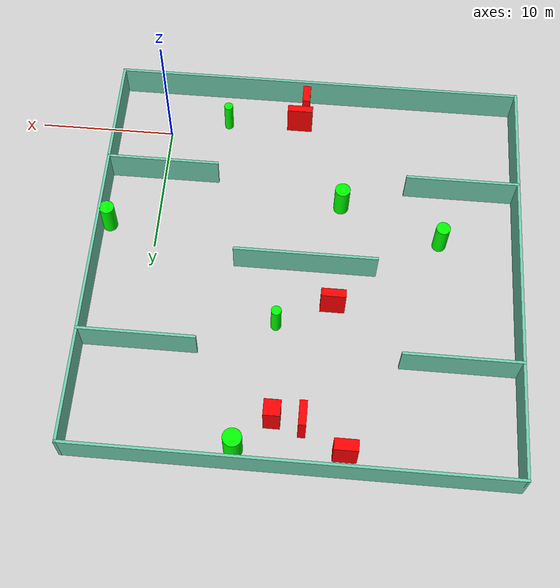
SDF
<sdf version="1.7">
 <world name="default">
  <light name="sun" type="directional">
   <pose>0 0 10 0 -0 0</pose>
   <diffuse>0.8 0.8 0.8 1</diffuse>
   <specular>0.2 0.2 0.2 1</specular>
   <attenuation>
    <range>1000</range>
    <constant>0.9</constant>
    <linear>0.01</linear>
    <quadratic>0.001</quadratic>
   </attenuation>
   <direction>-0.5 0.1 -0.9</direction>
   <spot><inner_angle>0</inner_angle><outer_angle>0</outer_angle><falloff>0</falloff></spot>
  </light>
  <model name="ground_plane">
   <static>1</static>
   <link name="link">
    <collision name="collision">
     <geometry><plane><normal>0 0 1</normal><size>100 100</size></plane></geometry>
     <surface>
      <contact><collide_bitmask>65535</collide_bitmask></contact>
      <friction><ode><mu>100</mu><mu2>50</mu2></ode></friction>
     </surface>
    </collision>
    <visual name="visual">
     <cast_shadows>0</cast_shadows>
     <geometry><plane><normal>0 0 1</normal><size>100 100</size></plane></geometry>
     <material>
      <script><uri>file://media/materials/scripts/gazebo.material</uri><name>Gazebo/Grey</name></script>
     </material>
    </visual>
   </link>
  </model>
  <gravity>0 0 -9.8</gravity>
  <magnetic_field>6e-06 2.3e-05 -4.2e-05</magnetic_field>
  <atmosphere type="adiabatic"/>
  <physics type="ode">
   <max_step_size>0.001</max_step_size>
   <real_time_factor>1</real_time_factor>
   <real_time_update_rate>1000</real_time_update_rate>
  </physics>
  <scene><ambient>0.4 0.4 0.4 1</ambient><background>0.7 0.7 0.7 1</background><shadows>1</shadows></scene>
  <spherical_coordinates>
   <surface_model>EARTH_WGS84</surface_model>
   <latitude_deg>0</latitude_deg>
   <longitude_deg>0</longitude_deg>
   <elevation>0</elevation>
   <heading_deg>0</heading_deg>
  </spherical_coordinates>
  <model name="my_base_walls">
   <link name="Wall_10">
    <collision name="Wall_10_Collision">
     <geometry><box><size>8.2 0.2 2.5</size></box></geometry>
     <pose>0 0 1.25 0 -0 0</pose>
    </collision>
    <visual name="Wall_10_Visual">
     <pose>0 0 1.25 0 -0 0</pose>
     <geometry><box><size>8.2 0.2 2.5</size></box></geometry>
     <material>
      <script><uri>file://media/materials/scripts/gazebo.material</uri><name>Gazebo/Grey</name></script>
      <ambient>0.435294 0.796078 0.67451 1</ambient>
     </material>
     <meta><layer>0</layer></meta>
    </visual>
    <pose>-11 -7 0 0 -0 0</pose>
   </link>
   <link name="Wall_12">
    <collision name="Wall_12_Collision">
     <geometry><box><size>8.2 0.2 2.5</size></box></geometry>
     <pose>0 0 1.25 0 -0 0</pose>
    </collision>
    <visual name="Wall_12_Visual">
     <pose>0 0 1.25 0 -0 0</pose>
     <geometry><box><size>8.2 0.2 2.5</size></box></geometry>
     <material>
      <script><uri>file://media/materials/scripts/gazebo.material</uri><name>Gazebo/Grey</name></script>
      <ambient>0.435294 0.796078 0.67451 1</ambient>
     </material>
     <meta><layer>0</layer></meta>
    </visual>
    <pose>-11 7 0 0 -0 0</pose>
   </link>
   <link name="Wall_14">
    <collision name="Wall_14_Collision">
     <geometry><box><size>8.2 0.2 2.5</size></box></geometry>
     <pose>0 0 1.25 0 -0 0</pose>
    </collision>
    <visual name="Wall_14_Visual">
     <pose>0 0 1.25 0 -0 0</pose>
     <geometry><box><size>8.2 0.2 2.5</size></box></geometry>
     <material>
      <script><uri>file://media/materials/scripts/gazebo.material</uri><name>Gazebo/Grey</name></script>
      <ambient>0.435294 0.796078 0.67451 1</ambient>
     </material>
     <meta><layer>0</layer></meta>
    </visual>
    <pose>11 7 0 0 -0 3.14159</pose>
   </link>
   <link name="Wall_16">
    <collision name="Wall_16_Collision">
     <geometry><box><size>10.2 0.2 2.5</size></box></geometry>
     <pose>0 0 1.25 0 -0 0</pose>
    </collision>
    <visual name="Wall_16_Visual">
     <pose>0 0 1.25 0 -0 0</pose>
     <geometry><box><size>10.2 0.2 2.5</size></box></geometry>
     <material>
      <script><uri>file://media/materials/scripts/gazebo.material</uri><name>Gazebo/Grey</name></script>
      <ambient>0.435294 0.796078 0.67451 1</ambient>
     </material>
     <meta><layer>0</layer></meta>
    </visual>
    <pose>0 0 0 0 -0 3.14159</pose>
   </link>
   <link name="Wall_2">
    <collision name="Wall_2_Collision">
     <geometry><box><size>30.2 0.2 2.5</size></box></geometry>
     <pose>0 0 1.25 0 -0 0</pose>
    </collision>
    <visual name="Wall_2_Visual">
     <pose>0 0 1.25 0 -0 0</pose>
     <geometry><box><size>30.2 0.2 2.5</size></box></geometry>
     <material>
      <script><uri>file://media/materials/scripts/gazebo.material</uri><name>Gazebo/Grey</name></script>
      <ambient>0.435294 0.796078 0.67451 1</ambient>
     </material>
     <meta><layer>0</layer></meta>
    </visual>
    <pose>0 -15 0 0 -0 3.14159</pose>
   </link>
   <link name="Wall_3">
    <collision name="Wall_3_Collision">
     <geometry><box><size>30.2 0.2 2.5</size></box></geometry>
     <pose>0 0 1.25 0 -0 0</pose>
    </collision>
    <visual name="Wall_3_Visual">
     <pose>0 0 1.25 0 -0 0</pose>
     <geometry><box><size>30.2 0.2 2.5</size></box></geometry>
     <material>
      <script><uri>file://media/materials/scripts/gazebo.material</uri><name>Gazebo/Grey</name></script>
      <ambient>0.435294 0.796078 0.67451 1</ambient>
     </material>
     <meta><layer>0</layer></meta>
    </visual>
    <pose>-15 0 0 0 -0 1.5708</pose>
   </link>
   <link name="Wall_4">
    <collision name="Wall_4_Collision">
     <geometry><box><size>30.2 0.2 2.5</size></box></geometry>
     <pose>0 0 1.25 0 -0 0</pose>
    </collision>
    <visual name="Wall_4_Visual">
     <pose>0 0 1.25 0 -0 0</pose>
     <geometry><box><size>30.2 0.2 2.5</size></box></geometry>
     <material>
      <script><uri>file://media/materials/scripts/gazebo.material</uri><name>Gazebo/Grey</name></script>
      <ambient>0.435294 0.796078 0.67451 1</ambient>
     </material>
     <meta><layer>0</layer></meta>
    </visual>
    <pose>0 15 0 0 -0 0</pose>
   </link>
   <link name="Wall_6">
    <collision name="Wall_6_Collision">
     <geometry><box><size>30.2 0.2 2.5</size></box></geometry>
     <pose>0 0 1.25 0 -0 0</pose>
    </collision>
    <visual name="Wall_6_Visual">
     <pose>0 0 1.25 0 -0 0</pose>
     <geometry><box><size>30.2 0.2 2.5</size></box></geometry>
     <material>
      <script><uri>file://media/materials/scripts/gazebo.material</uri><name>Gazebo/Grey</name></script>
      <ambient>0.435294 0.796078 0.67451 1</ambient>
     </material>
     <meta><layer>0</layer></meta>
    </visual>
    <pose>15 0 0 0 -0 1.5708</pose>
   </link>
   <link name="Wall_8">
    <collision name="Wall_8_Collision">
     <geometry><box><size>8.2 0.2 2.5</size></box></geometry>
     <pose>0 0 1.25 0 -0 0</pose>
    </collision>
    <visual name="Wall_8_Visual">
     <pose>0 0 1.25 0 -0 0</pose>
     <geometry><box><size>8.2 0.2 2.5</size></box></geometry>
     <material>
      <script><uri>file://media/materials/scripts/gazebo.material</uri><name>Gazebo/Grey</name></script>
      <ambient>0.435294 0.796078 0.67451 1</ambient>
     </material>
     <meta><layer>0</layer></meta>
    </visual>
    <pose>11 -7 0 0 -0 3.14159</pose>
   </link>
   <static>1</static>
   <pose>-11 11 0 0 -0 0</pose>
  </model>
  <model name="cylinder1">
   <static>1</static>
   <link name="link">
    <inertial>
     <mass>1</mass>
     <inertia><ixx>0.5</ixx><ixy>0</ixy><ixz>0</ixz><iyy>0.5</iyy><iyz>0</iyz><izz>1</izz></inertia>
    </inertial>
    <collision name="collision">
     <geometry><cylinder><radius>0.5004173884741655</radius><length>2.5</length></cylinder></geometry>
    </collision>
    <visual name="visual">
     <geometry><cylinder><radius>0.5004173884741655</radius><length>2.5</length></cylinder></geometry>
     <material>
      <ambient>0 1 0 1</ambient>
      <diffuse>0 1 0 1</diffuse>
      <specular>0.1 0.1 0.1 1</specular>
      <emissive>0 0 0 0</emissive>
     </material>
    </visual>
   </link>
   <pose>-20.59415393027612 8.161915423576847 1.25 0 0 0</pose>
  </model>
  <model name="cylinder2">
   <static>1</static>
   <link name="link">
    <inertial>
     <mass>1</mass>
     <inertia><ixx>0.5</ixx><ixy>0</ixy><ixz>0</ixz><iyy>0.5</iyy><iyz>0</iyz><izz>1</izz></inertia>
    </inertial>
    <collision name="collision">
     <geometry><cylinder><radius>0.32705305550341907</radius><length>2.5</length></cylinder></geometry>
    </collision>
    <visual name="visual">
     <geometry><cylinder><radius>0.32705305550341907</radius><length>2.5</length></cylinder></geometry>
     <material>
      <ambient>0 1 0 1</ambient>
      <diffuse>0 1 0 1</diffuse>
      <specular>0.1 0.1 0.1 1</specular>
      <emissive>0 0 0 0</emissive>
     </material>
    </visual>
   </link>
   <pose>-4.338063752239689 -1.2021950185012673 1.25 0 0 0</pose>
  </model>
  <model name="cylinder3">
   <static>1</static>
   <link name="link">
    <inertial>
     <mass>1</mass>
     <inertia><ixx>0.5</ixx><ixy>0</ixy><ixz>0</ixz><iyy>0.5</iyy><iyz>0</iyz><izz>1</izz></inertia>
    </inertial>
    <collision name="collision">
     <geometry><cylinder><radius>0.6456336425518986</radius><length>2.5</length></cylinder></geometry>
    </collision>
    <visual name="visual">
     <geometry><cylinder><radius>0.6456336425518986</radius><length>2.5</length></cylinder></geometry>
     <material>
      <ambient>0 1 0 1</ambient>
      <diffuse>0 1 0 1</diffuse>
      <specular>0.1 0.1 0.1 1</specular>
      <emissive>0 0 0 0</emissive>
     </material>
    </visual>
   </link>
   <pose>-7.230293407817932 24.78279987213035 1.25 0 0 0</pose>
  </model>
  <model name="cylinder4">
   <static>1</static>
   <link name="link">
    <inertial>
     <mass>1</mass>
     <inertia><ixx>0.5</ixx><ixy>0</ixy><ixz>0</ixz><iyy>0.5</iyy><iyz>0</iyz><izz>1</izz></inertia>
    </inertial>
    <collision name="collision">
     <geometry><cylinder><radius>0.3569568743859486</radius><length>2.5</length></cylinder></geometry>
    </collision>
    <visual name="visual">
     <geometry><cylinder><radius>0.3569568743859486</radius><length>2.5</length></cylinder></geometry>
     <material>
      <ambient>0 1 0 1</ambient>
      <diffuse>0 1 0 1</diffuse>
      <specular>0.1 0.1 0.1 1</specular>
      <emissive>0 0 0 0</emissive>
     </material>
    </visual>
   </link>
   <pose>-9.317991509180711 15.601817935871527 1.25 0 0 0</pose>
  </model>
  <model name="cylinder5">
   <static>1</static>
   <link name="link">
    <inertial>
     <mass>1</mass>
     <inertia><ixx>0.5</ixx><ixy>0</ixy><ixz>0</ixz><iyy>0.5</iyy><iyz>0</iyz><izz>1</izz></inertia>
    </inertial>
    <collision name="collision">
     <geometry><cylinder><radius>0.5484874315233345</radius><length>2.5</length></cylinder></geometry>
    </collision>
    <visual name="visual">
     <geometry><cylinder><radius>0.5484874315233345</radius><length>2.5</length></cylinder></geometry>
     <material>
      <ambient>0 1 0 1</ambient>
      <diffuse>0 1 0 1</diffuse>
      <specular>0.1 0.1 0.1 1</specular>
      <emissive>0 0 0 0</emissive>
     </material>
    </visual>
   </link>
   <pose>-13.334989281280391 5.546920800938198 1.25 0 0 0</pose>
  </model>
  <model name="cylinder6">
   <static>1</static>
   <link name="link">
    <inertial>
     <mass>1</mass>
     <inertia><ixx>0.5</ixx><ixy>0</ixy><ixz>0</ixz><iyy>0.5</iyy><iyz>0</iyz><izz>1</izz></inertia>
    </inertial>
    <collision name="collision">
     <geometry><cylinder><radius>0.5307686672925773</radius><length>2.5</length></cylinder></geometry>
    </collision>
    <visual name="visual">
     <geometry><cylinder><radius>0.5307686672925773</radius><length>2.5</length></cylinder></geometry>
     <material>
      <ambient>0 1 0 1</ambient>
      <diffuse>0 1 0 1</diffuse>
      <specular>0.1 0.1 0.1 1</specular>
      <emissive>0 0 0 0</emissive>
     </material>
    </visual>
   </link>
   <pose>3.4568298387914638 8.465633925809726 1.25 0 0 0</pose>
  </model>
  <model name="box1">
   <static>1</static>
   <link name="link">
    <inertial>
     <mass>1</mass>
     <inertia><ixx>0.083</ixx><ixy>0</ixy><ixz>0</ixz><iyy>0.083</iyy><iyz>0</iyz><izz>0.083</izz></inertia>
    </inertial>
    <collision name="collision">
     <geometry><box><size>1.870832811867794 0.5251064846441491 2.5</size></box></geometry>
    </collision>
    <visual name="visual">
     <geometry><box><size>1.870832811867794 0.5251064846441491 2.5</size></box></geometry>
     <material>
      <ambient>1 0 0 1</ambient>
      <diffuse>1 0 0 1</diffuse>
      <specular>0.1 0.1 0.1 1</specular>
      <emissive>0 0 0 0</emissive>
     </material>
    </visual>
    <sensor name="my_contact" type="contact">
     <contact><collision>box_collision</collision><topic>__default_topic__</topic></contact>
    </sensor>
   </link>
   <pose>-9.77549212135518 -1.427344744874031 1.25 0 0 0</pose>
  </model>
  <model name="box2">
   <static>1</static>
   <link name="link">
    <inertial>
     <mass>1</mass>
     <inertia><ixx>0.083</ixx><ixy>0</ixy><ixz>0</ixz><iyy>0.083</iyy><iyz>0</iyz><izz>0.083</izz></inertia>
    </inertial>
    <collision name="collision">
     <geometry><box><size>1.7376944934910374 0.5982142467357698 2.5</size></box></geometry>
    </collision>
    <visual name="visual">
     <geometry><box><size>1.7376944934910374 0.5982142467357698 2.5</size></box></geometry>
     <material>
      <ambient>1 0 0 1</ambient>
      <diffuse>1 0 0 1</diffuse>
      <specular>0.1 0.1 0.1 1</specular>
      <emissive>0 0 0 0</emissive>
     </material>
    </visual>
    <sensor name="my_contact" type="contact">
     <contact><collision>box_collision</collision><topic>__default_topic__</topic></contact>
    </sensor>
   </link>
   <pose>-13.144267125866653 13.913054086232489 1.25 0 0 0</pose>
  </model>
  <model name="box3">
   <static>1</static>
   <link name="link">
    <inertial>
     <mass>1</mass>
     <inertia><ixx>0.083</ixx><ixy>0</ixy><ixz>0</ixz><iyy>0.083</iyy><iyz>0</iyz><izz>0.083</izz></inertia>
    </inertial>
    <collision name="collision">
     <geometry><box><size>1.6165457201717055 0.7899362090777818 2.5</size></box></geometry>
    </collision>
    <visual name="visual">
     <geometry><box><size>1.6165457201717055 0.7899362090777818 2.5</size></box></geometry>
     <material>
      <ambient>1 0 0 1</ambient>
      <diffuse>1 0 0 1</diffuse>
      <specular>0.1 0.1 0.1 1</specular>
      <emissive>0 0 0 0</emissive>
     </material>
    </visual>
    <sensor name="my_contact" type="contact">
     <contact><collision>box_collision</collision><topic>__default_topic__</topic></contact>
    </sensor>
   </link>
   <pose>-14.541518817690747 24.637596201651405 1.25 0 0 0</pose>
  </model>
  <model name="box4">
   <static>1</static>
   <link name="link">
    <inertial>
     <mass>1</mass>
     <inertia><ixx>0.083</ixx><ixy>0</ixy><ixz>0</ixz><iyy>0.083</iyy><iyz>0</iyz><izz>0.083</izz></inertia>
    </inertial>
    <collision name="collision">
     <geometry><box><size>0.5243286717686318 1.7184487943898816 2.5</size></box></geometry>
    </collision>
    <visual name="visual">
     <geometry><box><size>0.5243286717686318 1.7184487943898816 2.5</size></box></geometry>
     <material>
      <ambient>1 0 0 1</ambient>
      <diffuse>1 0 0 1</diffuse>
      <specular>0.1 0.1 0.1 1</specular>
      <emissive>0 0 0 0</emissive>
     </material>
    </visual>
    <sensor name="my_contact" type="contact">
     <contact><collision>box_collision</collision><topic>__default_topic__</topic></contact>
    </sensor>
   </link>
   <pose>-11.629797810522188 22.72460110094004 1.25 0 0 0</pose>
  </model>
  <model name="box5">
   <static>1</static>
   <link name="link">
    <inertial>
     <mass>1</mass>
     <inertia><ixx>0.083</ixx><ixy>0</ixy><ixz>0</ixz><iyy>0.083</iyy><iyz>0</iyz><izz>0.083</izz></inertia>
    </inertial>
    <collision name="collision">
     <geometry><box><size>1.1467588031257991 1.1444516191816188 2.5</size></box></geometry>
    </collision>
    <visual name="visual">
     <geometry><box><size>1.1467588031257991 1.1444516191816188 2.5</size></box></geometry>
     <material>
      <ambient>1 0 0 1</ambient>
      <diffuse>1 0 0 1</diffuse>
      <specular>0.1 0.1 0.1 1</specular>
      <emissive>0 0 0 0</emissive>
     </material>
    </visual>
    <sensor name="my_contact" type="contact">
     <contact><collision>box_collision</collision><topic>__default_topic__</topic></contact>
    </sensor>
   </link>
   <pose>-9.60898123981113 22.551150969840066 1.25 0 0 0</pose>
  </model>
  <model name="box6">
   <static>1</static>
   <link name="link">
    <inertial>
     <mass>1</mass>
     <inertia><ixx>0.083</ixx><ixy>0</ixy><ixz>0</ixz><iyy>0.083</iyy><iyz>0</iyz><izz>0.083</izz></inertia>
    </inertial>
    <collision name="collision">
     <geometry><box><size>0.5567206402982728 1.391497786097809 2.5</size></box></geometry>
    </collision>
    <visual name="visual">
     <geometry><box><size>0.5567206402982728 1.391497786097809 2.5</size></box></geometry>
     <material>
      <ambient>1 0 0 1</ambient>
      <diffuse>1 0 0 1</diffuse>
      <specular>0.1 0.1 0.1 1</specular>
      <emissive>0 0 0 0</emissive>
     </material>
    </visual>
    <sensor name="my_contact" type="contact">
     <contact><collision>box_collision</collision><topic>__default_topic__</topic></contact>
    </sensor>
   </link>
   <pose>-10.158852269659524 -2.8924806723360836 1.25 0 0 0</pose>
  </model>
 </world>
</sdf>
